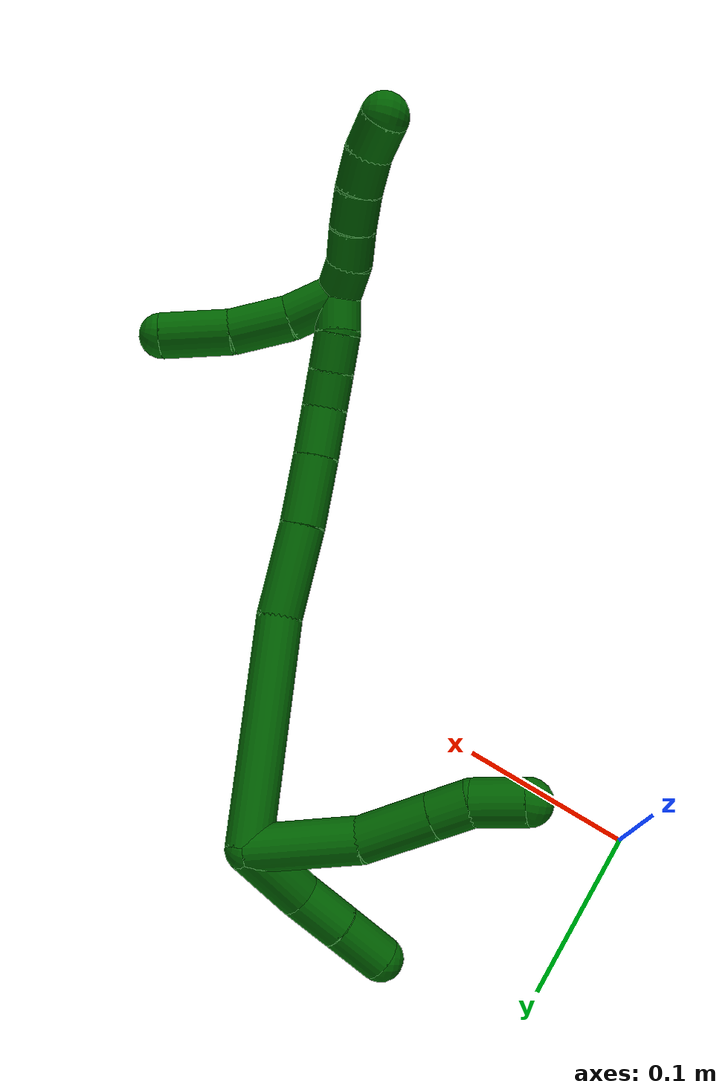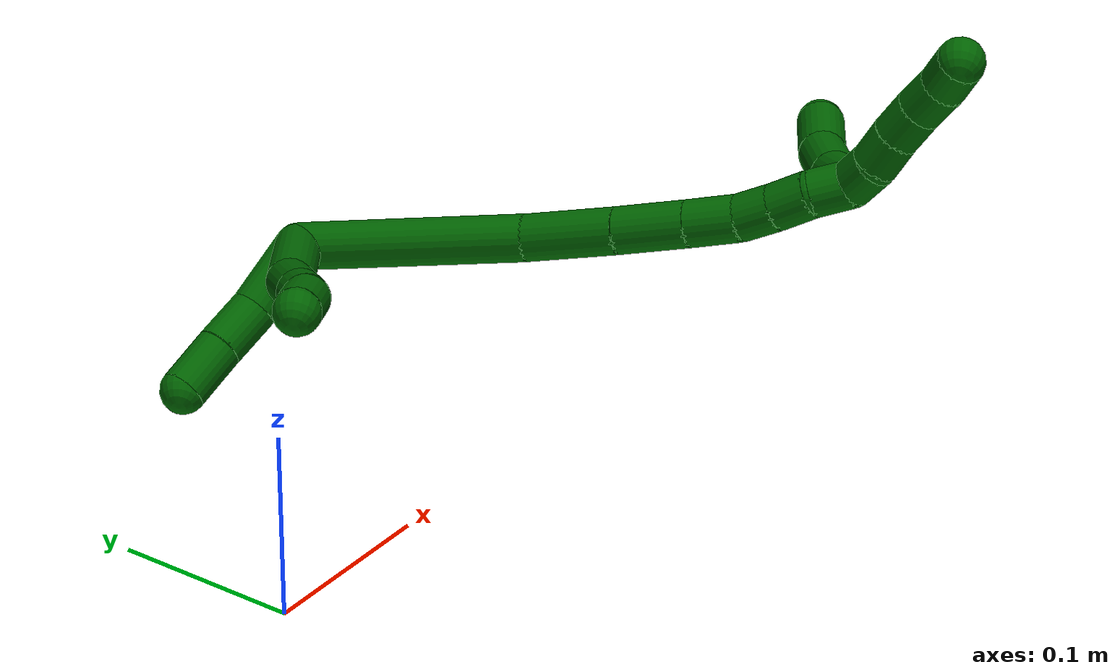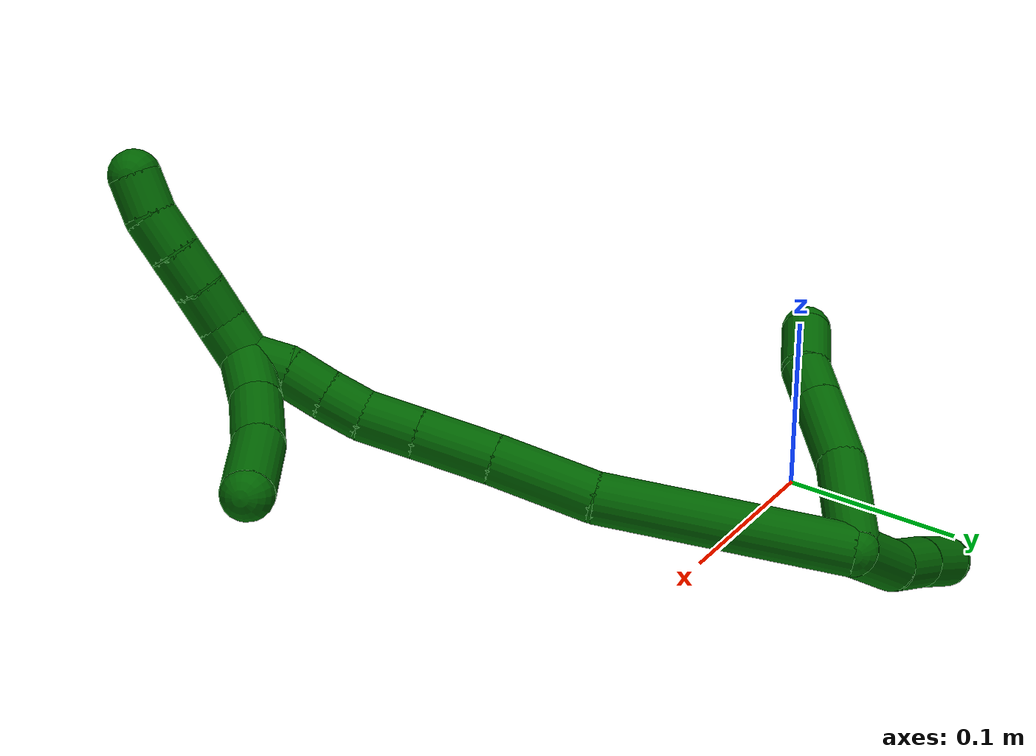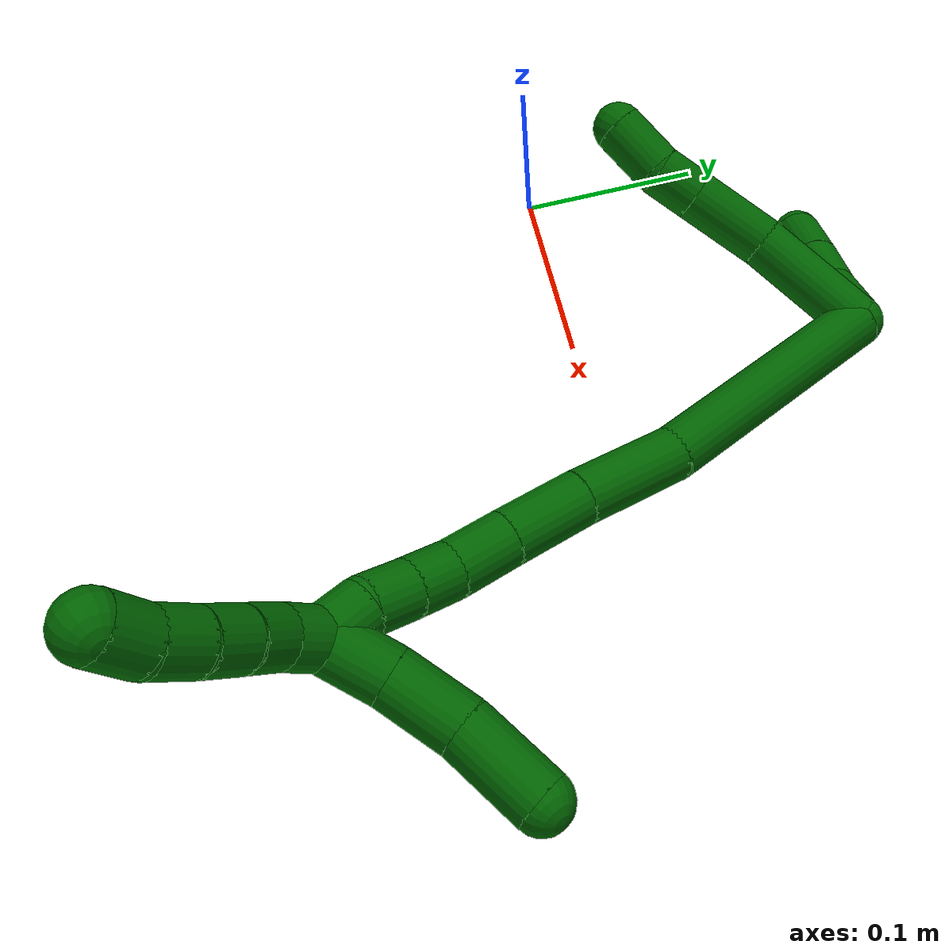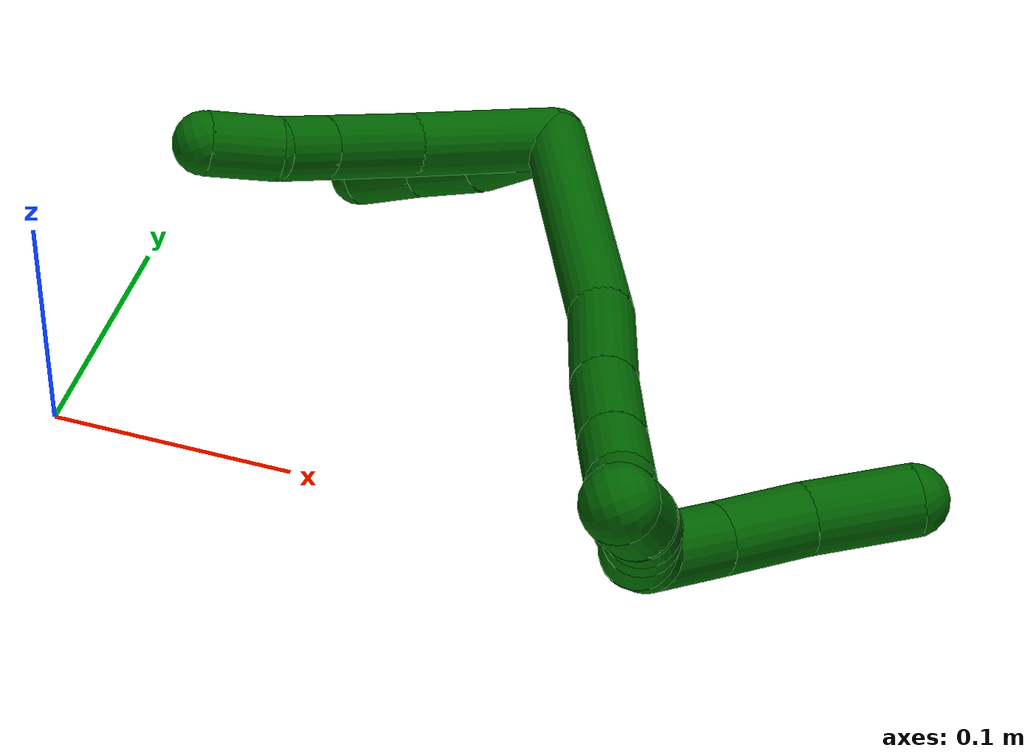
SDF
<sdf version="1.7">
 <world name="default">
  <model name="6">
   <static>0</static>
   <link name="6">
    <collision name="collision-cylinder-e_1_2_8">
     <pose>-0.00148 -0.015891 -0.025452 2.58345 -0.049288 -0.171617</pose>
     <geometry><cylinder><radius>0.0125</radius><length>0.060084</length></cylinder></geometry>
     <surface>
      <friction><ode><mu>1.16</mu><mu2>1.16</mu2><slip1>0</slip1><slip2>0</slip2></ode></friction>
      <contact><ode><kp>1e+06</kp><kd>1</kd><max_vel>0</max_vel><min_depth>0.001</min_depth></ode></contact>
     </surface>
    </collision>
    <visual name="visual-cylinder-e_1_2_8">
     <pose>-0.00148 -0.015891 -0.025452 2.58345 -0.049288 -0.171617</pose>
     <geometry><cylinder><radius>0.0125</radius><length>0.060084</length></cylinder></geometry>
     <material><ambient>0 0.392157 0.003922 1</ambient></material>
    </visual>
    <collision name="collision-cylinder-e_2_8_9">
     <pose>-0.001139 -0.046191 -0.064954 2.34363 0.090268 0.213444</pose>
     <geometry><cylinder><radius>0.0125</radius><length>0.040414</length></cylinder></geometry>
     <surface>
      <friction><ode><mu>1.16</mu><mu2>1.16</mu2><slip1>0</slip1><slip2>0</slip2></ode></friction>
      <contact><ode><kp>1e+06</kp><kd>1</kd><max_vel>0</max_vel><min_depth>0.001</min_depth></ode></contact>
     </surface>
    </collision>
    <visual name="visual-cylinder-e_2_8_9">
     <pose>-0.001139 -0.046191 -0.064954 2.34363 0.090268 0.213444</pose>
     <geometry><cylinder><radius>0.0125</radius><length>0.040414</length></cylinder></geometry>
     <material><ambient>0 0.392157 0.003922 1</ambient></material>
    </visual>
    <collision name="collision-cylinder-e_3_9_10">
     <pose>0.00162 -0.068137 -0.086336 2.34225 0.088864 0.209744</pose>
     <geometry><cylinder><radius>0.0125</radius><length>0.021115</length></cylinder></geometry>
     <surface>
      <friction><ode><mu>1.16</mu><mu2>1.16</mu2><slip1>0</slip1><slip2>0</slip2></ode></friction>
      <contact><ode><kp>1e+06</kp><kd>1</kd><max_vel>0</max_vel><min_depth>0.001</min_depth></ode></contact>
     </surface>
    </collision>
    <visual name="visual-cylinder-e_3_9_10">
     <pose>0.00162 -0.068137 -0.086336 2.34225 0.088864 0.209744</pose>
     <geometry><cylinder><radius>0.0125</radius><length>0.021115</length></cylinder></geometry>
     <material><ambient>0 0.392157 0.003922 1</ambient></material>
    </visual>
    <collision name="collision-cylinder-e_4_10_6">
     <pose>0.000345 -0.083708 -0.105159 2.53158 -0.156467 -0.488078</pose>
     <geometry><cylinder><radius>0.0125</radius><length>0.028387</length></cylinder></geometry>
     <surface>
      <friction><ode><mu>1.16</mu><mu2>1.16</mu2><slip1>0</slip1><slip2>0</slip2></ode></friction>
      <contact><ode><kp>1e+06</kp><kd>1</kd><max_vel>0</max_vel><min_depth>0.001</min_depth></ode></contact>
     </surface>
    </collision>
    <visual name="visual-cylinder-e_4_10_6">
     <pose>0.000345 -0.083708 -0.105159 2.53158 -0.156467 -0.488078</pose>
     <geometry><cylinder><radius>0.0125</radius><length>0.028387</length></cylinder></geometry>
     <material><ambient>0 0.392157 0.003922 1</ambient></material>
    </visual>
    <collision name="collision-cylinder-e_1_2_11">
     <pose>-0.006504 0.009512 -0.016921 -2.62946 -0.323281 1.11405</pose>
     <geometry><cylinder><radius>0.0125</radius><length>0.040944</length></cylinder></geometry>
     <surface>
      <friction><ode><mu>1.16</mu><mu2>1.16</mu2><slip1>0</slip1><slip2>0</slip2></ode></friction>
      <contact><ode><kp>1e+06</kp><kd>1</kd><max_vel>0</max_vel><min_depth>0.001</min_depth></ode></contact>
     </surface>
    </collision>
    <visual name="visual-cylinder-e_1_2_11">
     <pose>-0.006504 0.009512 -0.016921 -2.62946 -0.323281 1.11405</pose>
     <geometry><cylinder><radius>0.0125</radius><length>0.040944</length></cylinder></geometry>
     <material><ambient>0 0.392157 0.003922 1</ambient></material>
    </visual>
    <collision name="collision-cylinder-e_2_11_12">
     <pose>-0.018941 0.022721 -0.046425 -2.85588 -0.424885 1.96533</pose>
     <geometry><cylinder><radius>0.0125</radius><length>0.028789</length></cylinder></geometry>
     <surface>
      <friction><ode><mu>1.16</mu><mu2>1.16</mu2><slip1>0</slip1><slip2>0</slip2></ode></friction>
      <contact><ode><kp>1e+06</kp><kd>1</kd><max_vel>0</max_vel><min_depth>0.001</min_depth></ode></contact>
     </surface>
    </collision>
    <visual name="visual-cylinder-e_2_11_12">
     <pose>-0.018941 0.022721 -0.046425 -2.85588 -0.424885 1.96533</pose>
     <geometry><cylinder><radius>0.0125</radius><length>0.028789</length></cylinder></geometry>
     <material><ambient>0 0.392157 0.003922 1</ambient></material>
    </visual>
    <collision name="collision-cylinder-e_3_12_5">
     <pose>-0.030732 0.030918 -0.072216 -2.81317 -0.39743 1.76454</pose>
     <geometry><cylinder><radius>0.0125</radius><length>0.030267</length></cylinder></geometry>
     <surface>
      <friction><ode><mu>1.16</mu><mu2>1.16</mu2><slip1>0</slip1><slip2>0</slip2></ode></friction>
      <contact><ode><kp>1e+06</kp><kd>1</kd><max_vel>0</max_vel><min_depth>0.001</min_depth></ode></contact>
     </surface>
    </collision>
    <visual name="visual-cylinder-e_3_12_5">
     <pose>-0.030732 0.030918 -0.072216 -2.81317 -0.39743 1.76454</pose>
     <geometry><cylinder><radius>0.0125</radius><length>0.030267</length></cylinder></geometry>
     <material><ambient>0 0.392157 0.003922 1</ambient></material>
    </visual>
    <collision name="collision-cylinder-e_1_2_13">
     <pose>0.05398 -0.028834 0.001297 1.52583 1.07977 1.04053</pose>
     <geometry><cylinder><radius>0.0125</radius><length>0.122424</length></cylinder></geometry>
     <surface>
      <friction><ode><mu>1.16</mu><mu2>1.16</mu2><slip1>0</slip1><slip2>0</slip2></ode></friction>
      <contact><ode><kp>1e+06</kp><kd>1</kd><max_vel>0</max_vel><min_depth>0.001</min_depth></ode></contact>
     </surface>
    </collision>
    <visual name="visual-cylinder-e_1_2_13">
     <pose>0.05398 -0.028834 0.001297 1.52583 1.07977 1.04053</pose>
     <geometry><cylinder><radius>0.0125</radius><length>0.122424</length></cylinder></geometry>
     <material><ambient>0 0.392157 0.003922 1</ambient></material>
    </visual>
    <collision name="collision-cylinder-e_2_13_14">
     <pose>0.128302 -0.072702 0.001069 1.67198 0.931893 1.01567</pose>
     <geometry><cylinder><radius>0.0125</radius><length>0.05068</length></cylinder></geometry>
     <surface>
      <friction><ode><mu>1.16</mu><mu2>1.16</mu2><slip1>0</slip1><slip2>0</slip2></ode></friction>
      <contact><ode><kp>1e+06</kp><kd>1</kd><max_vel>0</max_vel><min_depth>0.001</min_depth></ode></contact>
     </surface>
    </collision>
    <visual name="visual-cylinder-e_2_13_14">
     <pose>0.128302 -0.072702 0.001069 1.67198 0.931893 1.01567</pose>
     <geometry><cylinder><radius>0.0125</radius><length>0.05068</length></cylinder></geometry>
     <material><ambient>0 0.392157 0.003922 1</ambient></material>
    </visual>
    <collision name="collision-cylinder-e_3_14_15">
     <pose>0.164207 -0.098654 -0.000709 1.59383 0.958902 0.977881</pose>
     <geometry><cylinder><radius>0.0125</radius><length>0.038026</length></cylinder></geometry>
     <surface>
      <friction><ode><mu>1.16</mu><mu2>1.16</mu2><slip1>0</slip1><slip2>0</slip2></ode></friction>
      <contact><ode><kp>1e+06</kp><kd>1</kd><max_vel>0</max_vel><min_depth>0.001</min_depth></ode></contact>
     </surface>
    </collision>
    <visual name="visual-cylinder-e_3_14_15">
     <pose>0.164207 -0.098654 -0.000709 1.59383 0.958902 0.977881</pose>
     <geometry><cylinder><radius>0.0125</radius><length>0.038026</length></cylinder></geometry>
     <material><ambient>0 0.392157 0.003922 1</ambient></material>
    </visual>
    <collision name="collision-cylinder-e_4_15_16">
     <pose>0.190971 -0.117398 -0.00089 1.56174 0.960892 0.953492</pose>
     <geometry><cylinder><radius>0.0125</radius><length>0.027327</length></cylinder></geometry>
     <surface>
      <friction><ode><mu>1.16</mu><mu2>1.16</mu2><slip1>0</slip1><slip2>0</slip2></ode></friction>
      <contact><ode><kp>1e+06</kp><kd>1</kd><max_vel>0</max_vel><min_depth>0.001</min_depth></ode></contact>
     </surface>
    </collision>
    <visual name="visual-cylinder-e_4_15_16">
     <pose>0.190971 -0.117398 -0.00089 1.56174 0.960892 0.953492</pose>
     <geometry><cylinder><radius>0.0125</radius><length>0.027327</length></cylinder></geometry>
     <material><ambient>0 0.392157 0.003922 1</ambient></material>
    </visual>
    <collision name="collision-cylinder-e_5_16_17">
     <pose>0.209167 -0.132566 -0.000276 1.49694 0.759973 0.710406</pose>
     <geometry><cylinder><radius>0.0125</radius><length>0.020312</length></cylinder></geometry>
     <surface>
      <friction><ode><mu>1.16</mu><mu2>1.16</mu2><slip1>0</slip1><slip2>0</slip2></ode></friction>
      <contact><ode><kp>1e+06</kp><kd>1</kd><max_vel>0</max_vel><min_depth>0.001</min_depth></ode></contact>
     </surface>
    </collision>
    <visual name="visual-cylinder-e_5_16_17">
     <pose>0.209167 -0.132566 -0.000276 1.49694 0.759973 0.710406</pose>
     <geometry><cylinder><radius>0.0125</radius><length>0.020312</length></cylinder></geometry>
     <material><ambient>0 0.392157 0.003922 1</ambient></material>
    </visual>
    <collision name="collision-cylinder-e_6_17_18">
     <pose>0.222953 -0.147849 0.001009 1.47769 0.705168 0.64686</pose>
     <geometry><cylinder><radius>0.0125</radius><length>0.02095</length></cylinder></geometry>
     <surface>
      <friction><ode><mu>1.16</mu><mu2>1.16</mu2><slip1>0</slip1><slip2>0</slip2></ode></friction>
      <contact><ode><kp>1e+06</kp><kd>1</kd><max_vel>0</max_vel><min_depth>0.001</min_depth></ode></contact>
     </surface>
    </collision>
    <visual name="visual-cylinder-e_6_17_18">
     <pose>0.222953 -0.147849 0.001009 1.47769 0.705168 0.64686</pose>
     <geometry><cylinder><radius>0.0125</radius><length>0.02095</length></cylinder></geometry>
     <material><ambient>0 0.392157 0.003922 1</ambient></material>
    </visual>
    <collision name="collision-cylinder-e_7_18_1">
     <pose>0.237885 -0.161548 0.003588 1.26191 0.932412 0.704586</pose>
     <geometry><cylinder><radius>0.0125</radius><length>0.02028</length></cylinder></geometry>
     <surface>
      <friction><ode><mu>1.16</mu><mu2>1.16</mu2><slip1>0</slip1><slip2>0</slip2></ode></friction>
      <contact><ode><kp>1e+06</kp><kd>1</kd><max_vel>0</max_vel><min_depth>0.001</min_depth></ode></contact>
     </surface>
    </collision>
    <visual name="visual-cylinder-e_7_18_1">
     <pose>0.237885 -0.161548 0.003588 1.26191 0.932412 0.704586</pose>
     <geometry><cylinder><radius>0.0125</radius><length>0.02028</length></cylinder></geometry>
     <material><ambient>0 0.392157 0.003922 1</ambient></material>
    </visual>
    <collision name="collision-cylinder-e_1_1_19">
     <pose>0.243864 -0.157709 0.015815 -0.745652 -0.151851 0.059489</pose>
     <geometry><cylinder><radius>0.0125</radius><length>0.028616</length></cylinder></geometry>
     <surface>
      <friction><ode><mu>1.16</mu><mu2>1.16</mu2><slip1>0</slip1><slip2>0</slip2></ode></friction>
      <contact><ode><kp>1e+06</kp><kd>1</kd><max_vel>0</max_vel><min_depth>0.001</min_depth></ode></contact>
     </surface>
    </collision>
    <visual name="visual-cylinder-e_1_1_19">
     <pose>0.243864 -0.157709 0.015815 -0.745652 -0.151851 0.059489</pose>
     <geometry><cylinder><radius>0.0125</radius><length>0.028616</length></cylinder></geometry>
     <material><ambient>0 0.392157 0.003922 1</ambient></material>
    </visual>
    <collision name="collision-cylinder-e_2_19_20">
     <pose>0.240187 -0.139458 0.04011 -0.556788 -0.092113 0.026345</pose>
     <geometry><cylinder><radius>0.0125</radius><length>0.032895</length></cylinder></geometry>
     <surface>
      <friction><ode><mu>1.16</mu><mu2>1.16</mu2><slip1>0</slip1><slip2>0</slip2></ode></friction>
      <contact><ode><kp>1e+06</kp><kd>1</kd><max_vel>0</max_vel><min_depth>0.001</min_depth></ode></contact>
     </surface>
    </collision>
    <visual name="visual-cylinder-e_2_19_20">
     <pose>0.240187 -0.139458 0.04011 -0.556788 -0.092113 0.026345</pose>
     <geometry><cylinder><radius>0.0125</radius><length>0.032895</length></cylinder></geometry>
     <material><ambient>0 0.392157 0.003922 1</ambient></material>
    </visual>
    <collision name="collision-cylinder-e_3_20_4">
     <pose>0.239073 -0.122946 0.071576 -0.420663 0.020739 -0.004428</pose>
     <geometry><cylinder><radius>0.0125</radius><length>0.038488</length></cylinder></geometry>
     <surface>
      <friction><ode><mu>1.16</mu><mu2>1.16</mu2><slip1>0</slip1><slip2>0</slip2></ode></friction>
      <contact><ode><kp>1e+06</kp><kd>1</kd><max_vel>0</max_vel><min_depth>0.001</min_depth></ode></contact>
     </surface>
    </collision>
    <visual name="visual-cylinder-e_3_20_4">
     <pose>0.239073 -0.122946 0.071576 -0.420663 0.020739 -0.004428</pose>
     <geometry><cylinder><radius>0.0125</radius><length>0.038488</length></cylinder></geometry>
     <material><ambient>0 0.392157 0.003922 1</ambient></material>
    </visual>
    <collision name="collision-cylinder-e_1_1_21">
     <pose>0.24877 -0.176921 0.005496 1.56337 0.277727 0.275699</pose>
     <geometry><cylinder><radius>0.0125</radius><length>0.02</length></cylinder></geometry>
     <surface>
      <friction><ode><mu>1.16</mu><mu2>1.16</mu2><slip1>0</slip1><slip2>0</slip2></ode></friction>
      <contact><ode><kp>1e+06</kp><kd>1</kd><max_vel>0</max_vel><min_depth>0.001</min_depth></ode></contact>
     </surface>
    </collision>
    <visual name="visual-cylinder-e_1_1_21">
     <pose>0.24877 -0.176921 0.005496 1.56337 0.277727 0.275699</pose>
     <geometry><cylinder><radius>0.0125</radius><length>0.02</length></cylinder></geometry>
     <material><ambient>0 0.392157 0.003922 1</ambient></material>
    </visual>
    <collision name="collision-cylinder-e_2_21_22">
     <pose>0.253416 -0.196051 0.00799 1.32143 0.191557 0.149068</pose>
     <geometry><cylinder><radius>0.0125</radius><length>0.02</length></cylinder></geometry>
     <surface>
      <friction><ode><mu>1.16</mu><mu2>1.16</mu2><slip1>0</slip1><slip2>0</slip2></ode></friction>
      <contact><ode><kp>1e+06</kp><kd>1</kd><max_vel>0</max_vel><min_depth>0.001</min_depth></ode></contact>
     </surface>
    </collision>
    <visual name="visual-cylinder-e_2_21_22">
     <pose>0.253416 -0.196051 0.00799 1.32143 0.191557 0.149068</pose>
     <geometry><cylinder><radius>0.0125</radius><length>0.02</length></cylinder></geometry>
     <material><ambient>0 0.392157 0.003922 1</ambient></material>
    </visual>
    <collision name="collision-cylinder-e_3_22_23">
     <pose>0.257688 -0.215119 0.012174 1.3885 0.239136 0.199374</pose>
     <geometry><cylinder><radius>0.0125</radius><length>0.02</length></cylinder></geometry>
     <surface>
      <friction><ode><mu>1.16</mu><mu2>1.16</mu2><slip1>0</slip1><slip2>0</slip2></ode></friction>
      <contact><ode><kp>1e+06</kp><kd>1</kd><max_vel>0</max_vel><min_depth>0.001</min_depth></ode></contact>
     </surface>
    </collision>
    <visual name="visual-cylinder-e_3_22_23">
     <pose>0.257688 -0.215119 0.012174 1.3885 0.239136 0.199374</pose>
     <geometry><cylinder><radius>0.0125</radius><length>0.02</length></cylinder></geometry>
     <material><ambient>0 0.392157 0.003922 1</ambient></material>
    </visual>
    <collision name="collision-cylinder-e_4_23_24">
     <pose>0.262593 -0.234313 0.014737 1.4878 0.256392 0.236146</pose>
     <geometry><cylinder><radius>0.0125</radius><length>0.02</length></cylinder></geometry>
     <surface>
      <friction><ode><mu>1.16</mu><mu2>1.16</mu2><slip1>0</slip1><slip2>0</slip2></ode></friction>
      <contact><ode><kp>1e+06</kp><kd>1</kd><max_vel>0</max_vel><min_depth>0.001</min_depth></ode></contact>
     </surface>
    </collision>
    <visual name="visual-cylinder-e_4_23_24">
     <pose>0.262593 -0.234313 0.014737 1.4878 0.256392 0.236146</pose>
     <geometry><cylinder><radius>0.0125</radius><length>0.02</length></cylinder></geometry>
     <material><ambient>0 0.392157 0.003922 1</ambient></material>
    </visual>
    <collision name="collision-cylinder-e_5_24_3">
     <pose>0.265881 -0.253912 0.015044 1.6205 0.075288 0.079122</pose>
     <geometry><cylinder><radius>0.0125</radius><length>0.02</length></cylinder></geometry>
     <surface>
      <friction><ode><mu>1.16</mu><mu2>1.16</mu2><slip1>0</slip1><slip2>0</slip2></ode></friction>
      <contact><ode><kp>1e+06</kp><kd>1</kd><max_vel>0</max_vel><min_depth>0.001</min_depth></ode></contact>
     </surface>
    </collision>
    <visual name="visual-cylinder-e_5_24_3">
     <pose>0.265881 -0.253912 0.015044 1.6205 0.075288 0.079122</pose>
     <geometry><cylinder><radius>0.0125</radius><length>0.02</length></cylinder></geometry>
     <material><ambient>0 0.392157 0.003922 1</ambient></material>
    </visual>
    <collision name="collision-sphere-3">
     <pose>0.266633 -0.263872 0.014548 0 -0 0</pose>
     <geometry><sphere><radius>0.0125</radius></sphere></geometry>
     <surface>
      <friction><ode><mu>1.16</mu><mu2>1.16</mu2><slip1>0</slip1><slip2>0</slip2></ode></friction>
      <contact><ode><kp>1e+06</kp><kd>1</kd><max_vel>0</max_vel><min_depth>0.001</min_depth></ode></contact>
     </surface>
    </collision>
    <visual name="visual-sphere-3">
     <pose>0.266633 -0.263872 0.014548 0 -0 0</pose>
     <geometry><sphere><radius>0.0125</radius></sphere></geometry>
     <material><ambient>0 0.392157 0.003922 1</ambient></material>
    </visual>
    <collision name="collision-sphere-24">
     <pose>0.265129 -0.243953 0.015539 0 -0 0</pose>
     <geometry><sphere><radius>0.0125</radius></sphere></geometry>
     <surface>
      <friction><ode><mu>1.16</mu><mu2>1.16</mu2><slip1>0</slip1><slip2>0</slip2></ode></friction>
      <contact><ode><kp>1e+06</kp><kd>1</kd><max_vel>0</max_vel><min_depth>0.001</min_depth></ode></contact>
     </surface>
    </collision>
    <visual name="visual-sphere-24">
     <pose>0.265129 -0.243953 0.015539 0 -0 0</pose>
     <geometry><sphere><radius>0.0125</radius></sphere></geometry>
     <material><ambient>0 0.392157 0.003922 1</ambient></material>
    </visual>
    <collision name="collision-sphere-23">
     <pose>0.260057 -0.224673 0.013935 0 -0 0</pose>
     <geometry><sphere><radius>0.0125</radius></sphere></geometry>
     <surface>
      <friction><ode><mu>1.16</mu><mu2>1.16</mu2><slip1>0</slip1><slip2>0</slip2></ode></friction>
      <contact><ode><kp>1e+06</kp><kd>1</kd><max_vel>0</max_vel><min_depth>0.001</min_depth></ode></contact>
     </surface>
    </collision>
    <visual name="visual-sphere-23">
     <pose>0.260057 -0.224673 0.013935 0 -0 0</pose>
     <geometry><sphere><radius>0.0125</radius></sphere></geometry>
     <material><ambient>0 0.392157 0.003922 1</ambient></material>
    </visual>
    <collision name="collision-sphere-22">
     <pose>0.25532 -0.205565 0.010413 0 -0 0</pose>
     <geometry><sphere><radius>0.0125</radius></sphere></geometry>
     <surface>
      <friction><ode><mu>1.16</mu><mu2>1.16</mu2><slip1>0</slip1><slip2>0</slip2></ode></friction>
      <contact><ode><kp>1e+06</kp><kd>1</kd><max_vel>0</max_vel><min_depth>0.001</min_depth></ode></contact>
     </surface>
    </collision>
    <visual name="visual-sphere-22">
     <pose>0.25532 -0.205565 0.010413 0 -0 0</pose>
     <geometry><sphere><radius>0.0125</radius></sphere></geometry>
     <material><ambient>0 0.392157 0.003922 1</ambient></material>
    </visual>
    <collision name="collision-sphere-21">
     <pose>0.251512 -0.186538 0.005567 0 -0 0</pose>
     <geometry><sphere><radius>0.0125</radius></sphere></geometry>
     <surface>
      <friction><ode><mu>1.16</mu><mu2>1.16</mu2><slip1>0</slip1><slip2>0</slip2></ode></friction>
      <contact><ode><kp>1e+06</kp><kd>1</kd><max_vel>0</max_vel><min_depth>0.001</min_depth></ode></contact>
     </surface>
    </collision>
    <visual name="visual-sphere-21">
     <pose>0.251512 -0.186538 0.005567 0 -0 0</pose>
     <geometry><sphere><radius>0.0125</radius></sphere></geometry>
     <material><ambient>0 0.392157 0.003922 1</ambient></material>
    </visual>
    <collision name="collision-sphere-4">
     <pose>0.239472 -0.115089 0.089139 0 -0 0</pose>
     <geometry><sphere><radius>0.0125</radius></sphere></geometry>
     <surface>
      <friction><ode><mu>1.16</mu><mu2>1.16</mu2><slip1>0</slip1><slip2>0</slip2></ode></friction>
      <contact><ode><kp>1e+06</kp><kd>1</kd><max_vel>0</max_vel><min_depth>0.001</min_depth></ode></contact>
     </surface>
    </collision>
    <visual name="visual-sphere-4">
     <pose>0.239472 -0.115089 0.089139 0 -0 0</pose>
     <geometry><sphere><radius>0.0125</radius></sphere></geometry>
     <material><ambient>0 0.392157 0.003922 1</ambient></material>
    </visual>
    <collision name="collision-sphere-20">
     <pose>0.238674 -0.130803 0.054014 0 -0 0</pose>
     <geometry><sphere><radius>0.0125</radius></sphere></geometry>
     <surface>
      <friction><ode><mu>1.16</mu><mu2>1.16</mu2><slip1>0</slip1><slip2>0</slip2></ode></friction>
      <contact><ode><kp>1e+06</kp><kd>1</kd><max_vel>0</max_vel><min_depth>0.001</min_depth></ode></contact>
     </surface>
    </collision>
    <visual name="visual-sphere-20">
     <pose>0.238674 -0.130803 0.054014 0 -0 0</pose>
     <geometry><sphere><radius>0.0125</radius></sphere></geometry>
     <material><ambient>0 0.392157 0.003922 1</ambient></material>
    </visual>
    <collision name="collision-sphere-11">
     <pose>-0.013007 0.019025 -0.033842 0 -0 0</pose>
     <geometry><sphere><radius>0.0125</radius></sphere></geometry>
     <surface>
      <friction><ode><mu>1.16</mu><mu2>1.16</mu2><slip1>0</slip1><slip2>0</slip2></ode></friction>
      <contact><ode><kp>1e+06</kp><kd>1</kd><max_vel>0</max_vel><min_depth>0.001</min_depth></ode></contact>
     </surface>
    </collision>
    <visual name="visual-sphere-11">
     <pose>-0.013007 0.019025 -0.033842 0 -0 0</pose>
     <geometry><sphere><radius>0.0125</radius></sphere></geometry>
     <material><ambient>0 0.392157 0.003922 1</ambient></material>
    </visual>
    <collision name="collision-sphere-6">
     <pose>-0.001867 -0.09174 -0.11665 0 -0 0</pose>
     <geometry><sphere><radius>0.0125</radius></sphere></geometry>
     <surface>
      <friction><ode><mu>1.16</mu><mu2>1.16</mu2><slip1>0</slip1><slip2>0</slip2></ode></friction>
      <contact><ode><kp>1e+06</kp><kd>1</kd><max_vel>0</max_vel><min_depth>0.001</min_depth></ode></contact>
     </surface>
    </collision>
    <visual name="visual-sphere-6">
     <pose>-0.001867 -0.09174 -0.11665 0 -0 0</pose>
     <geometry><sphere><radius>0.0125</radius></sphere></geometry>
     <material><ambient>0 0.392157 0.003922 1</ambient></material>
    </visual>
    <collision name="collision-sphere-10">
     <pose>0.002557 -0.075676 -0.093668 0 -0 0</pose>
     <geometry><sphere><radius>0.0125</radius></sphere></geometry>
     <surface>
      <friction><ode><mu>1.16</mu><mu2>1.16</mu2><slip1>0</slip1><slip2>0</slip2></ode></friction>
      <contact><ode><kp>1e+06</kp><kd>1</kd><max_vel>0</max_vel><min_depth>0.001</min_depth></ode></contact>
     </surface>
    </collision>
    <visual name="visual-sphere-10">
     <pose>0.002557 -0.075676 -0.093668 0 -0 0</pose>
     <geometry><sphere><radius>0.0125</radius></sphere></geometry>
     <material><ambient>0 0.392157 0.003922 1</ambient></material>
    </visual>
    <collision name="collision-sphere-9">
     <pose>0.000683 -0.060599 -0.079005 0 -0 0</pose>
     <geometry><sphere><radius>0.0125</radius></sphere></geometry>
     <surface>
      <friction><ode><mu>1.16</mu><mu2>1.16</mu2><slip1>0</slip1><slip2>0</slip2></ode></friction>
      <contact><ode><kp>1e+06</kp><kd>1</kd><max_vel>0</max_vel><min_depth>0.001</min_depth></ode></contact>
     </surface>
    </collision>
    <visual name="visual-sphere-9">
     <pose>0.000683 -0.060599 -0.079005 0 -0 0</pose>
     <geometry><sphere><radius>0.0125</radius></sphere></geometry>
     <material><ambient>0 0.392157 0.003922 1</ambient></material>
    </visual>
    <collision name="collision-sphere-2">
     <geometry><sphere><radius>0.0125</radius></sphere></geometry>
     <surface>
      <friction><ode><mu>1.16</mu><mu2>1.16</mu2><slip1>0</slip1><slip2>0</slip2></ode></friction>
      <contact><ode><kp>1e+06</kp><kd>1</kd><max_vel>0</max_vel><min_depth>0.001</min_depth></ode></contact>
     </surface>
    </collision>
    <visual name="visual-sphere-2">
     <geometry><sphere><radius>0.0125</radius></sphere></geometry>
     <material><ambient>0 0.392157 0.003922 1</ambient></material>
    </visual>
    <collision name="collision-sphere-19">
     <pose>0.2417 -0.148113 0.026205 0 -0 0</pose>
     <geometry><sphere><radius>0.0125</radius></sphere></geometry>
     <surface>
      <friction><ode><mu>1.16</mu><mu2>1.16</mu2><slip1>0</slip1><slip2>0</slip2></ode></friction>
      <contact><ode><kp>1e+06</kp><kd>1</kd><max_vel>0</max_vel><min_depth>0.001</min_depth></ode></contact>
     </surface>
    </collision>
    <visual name="visual-sphere-19">
     <pose>0.2417 -0.148113 0.026205 0 -0 0</pose>
     <geometry><sphere><radius>0.0125</radius></sphere></geometry>
     <material><ambient>0 0.392157 0.003922 1</ambient></material>
    </visual>
    <collision name="collision-sphere-8">
     <pose>-0.00296 -0.031783 -0.050904 0 -0 0</pose>
     <geometry><sphere><radius>0.0125</radius></sphere></geometry>
     <surface>
      <friction><ode><mu>1.16</mu><mu2>1.16</mu2><slip1>0</slip1><slip2>0</slip2></ode></friction>
      <contact><ode><kp>1e+06</kp><kd>1</kd><max_vel>0</max_vel><min_depth>0.001</min_depth></ode></contact>
     </surface>
    </collision>
    <visual name="visual-sphere-8">
     <pose>-0.00296 -0.031783 -0.050904 0 -0 0</pose>
     <geometry><sphere><radius>0.0125</radius></sphere></geometry>
     <material><ambient>0 0.392157 0.003922 1</ambient></material>
    </visual>
    <collision name="collision-sphere-12">
     <pose>-0.024874 0.026417 -0.059008 0 -0 0</pose>
     <geometry><sphere><radius>0.0125</radius></sphere></geometry>
     <surface>
      <friction><ode><mu>1.16</mu><mu2>1.16</mu2><slip1>0</slip1><slip2>0</slip2></ode></friction>
      <contact><ode><kp>1e+06</kp><kd>1</kd><max_vel>0</max_vel><min_depth>0.001</min_depth></ode></contact>
     </surface>
    </collision>
    <visual name="visual-sphere-12">
     <pose>-0.024874 0.026417 -0.059008 0 -0 0</pose>
     <geometry><sphere><radius>0.0125</radius></sphere></geometry>
     <material><ambient>0 0.392157 0.003922 1</ambient></material>
    </visual>
    <collision name="collision-sphere-5">
     <pose>-0.036589 0.035419 -0.085424 0 -0 0</pose>
     <geometry><sphere><radius>0.0125</radius></sphere></geometry>
     <surface>
      <friction><ode><mu>1.16</mu><mu2>1.16</mu2><slip1>0</slip1><slip2>0</slip2></ode></friction>
      <contact><ode><kp>1e+06</kp><kd>1</kd><max_vel>0</max_vel><min_depth>0.001</min_depth></ode></contact>
     </surface>
    </collision>
    <visual name="visual-sphere-5">
     <pose>-0.036589 0.035419 -0.085424 0 -0 0</pose>
     <geometry><sphere><radius>0.0125</radius></sphere></geometry>
     <material><ambient>0 0.392157 0.003922 1</ambient></material>
    </visual>
    <collision name="collision-sphere-13">
     <pose>0.10796 -0.057668 0.002595 0 -0 0</pose>
     <geometry><sphere><radius>0.0125</radius></sphere></geometry>
     <surface>
      <friction><ode><mu>1.16</mu><mu2>1.16</mu2><slip1>0</slip1><slip2>0</slip2></ode></friction>
      <contact><ode><kp>1e+06</kp><kd>1</kd><max_vel>0</max_vel><min_depth>0.001</min_depth></ode></contact>
     </surface>
    </collision>
    <visual name="visual-sphere-13">
     <pose>0.10796 -0.057668 0.002595 0 -0 0</pose>
     <geometry><sphere><radius>0.0125</radius></sphere></geometry>
     <material><ambient>0 0.392157 0.003922 1</ambient></material>
    </visual>
    <collision name="collision-sphere-14">
     <pose>0.148644 -0.087735 -0.000458 0 -0 0</pose>
     <geometry><sphere><radius>0.0125</radius></sphere></geometry>
     <surface>
      <friction><ode><mu>1.16</mu><mu2>1.16</mu2><slip1>0</slip1><slip2>0</slip2></ode></friction>
      <contact><ode><kp>1e+06</kp><kd>1</kd><max_vel>0</max_vel><min_depth>0.001</min_depth></ode></contact>
     </surface>
    </collision>
    <visual name="visual-sphere-14">
     <pose>0.148644 -0.087735 -0.000458 0 -0 0</pose>
     <geometry><sphere><radius>0.0125</radius></sphere></geometry>
     <material><ambient>0 0.392157 0.003922 1</ambient></material>
    </visual>
    <collision name="collision-sphere-15">
     <pose>0.179771 -0.109572 -0.000961 0 -0 0</pose>
     <geometry><sphere><radius>0.0125</radius></sphere></geometry>
     <surface>
      <friction><ode><mu>1.16</mu><mu2>1.16</mu2><slip1>0</slip1><slip2>0</slip2></ode></friction>
      <contact><ode><kp>1e+06</kp><kd>1</kd><max_vel>0</max_vel><min_depth>0.001</min_depth></ode></contact>
     </surface>
    </collision>
    <visual name="visual-sphere-15">
     <pose>0.179771 -0.109572 -0.000961 0 -0 0</pose>
     <geometry><sphere><radius>0.0125</radius></sphere></geometry>
     <material><ambient>0 0.392157 0.003922 1</ambient></material>
    </visual>
    <collision name="collision-sphere-16">
     <pose>0.20217 -0.125224 -0.000819 0 -0 0</pose>
     <geometry><sphere><radius>0.0125</radius></sphere></geometry>
     <surface>
      <friction><ode><mu>1.16</mu><mu2>1.16</mu2><slip1>0</slip1><slip2>0</slip2></ode></friction>
      <contact><ode><kp>1e+06</kp><kd>1</kd><max_vel>0</max_vel><min_depth>0.001</min_depth></ode></contact>
     </surface>
    </collision>
    <visual name="visual-sphere-16">
     <pose>0.20217 -0.125224 -0.000819 0 -0 0</pose>
     <geometry><sphere><radius>0.0125</radius></sphere></geometry>
     <material><ambient>0 0.392157 0.003922 1</ambient></material>
    </visual>
    <collision name="collision-sphere-17">
     <pose>0.216163 -0.139907 0.000267 0 -0 0</pose>
     <geometry><sphere><radius>0.0125</radius></sphere></geometry>
     <surface>
      <friction><ode><mu>1.16</mu><mu2>1.16</mu2><slip1>0</slip1><slip2>0</slip2></ode></friction>
      <contact><ode><kp>1e+06</kp><kd>1</kd><max_vel>0</max_vel><min_depth>0.001</min_depth></ode></contact>
     </surface>
    </collision>
    <visual name="visual-sphere-17">
     <pose>0.216163 -0.139907 0.000267 0 -0 0</pose>
     <geometry><sphere><radius>0.0125</radius></sphere></geometry>
     <material><ambient>0 0.392157 0.003922 1</ambient></material>
    </visual>
    <collision name="collision-sphere-18">
     <pose>0.229742 -0.155791 0.001751 0 -0 0</pose>
     <geometry><sphere><radius>0.0125</radius></sphere></geometry>
     <surface>
      <friction><ode><mu>1.16</mu><mu2>1.16</mu2><slip1>0</slip1><slip2>0</slip2></ode></friction>
      <contact><ode><kp>1e+06</kp><kd>1</kd><max_vel>0</max_vel><min_depth>0.001</min_depth></ode></contact>
     </surface>
    </collision>
    <visual name="visual-sphere-18">
     <pose>0.229742 -0.155791 0.001751 0 -0 0</pose>
     <geometry><sphere><radius>0.0125</radius></sphere></geometry>
     <material><ambient>0 0.392157 0.003922 1</ambient></material>
    </visual>
    <collision name="collision-sphere-1">
     <pose>0.246029 -0.167305 0.005424 0 -0 0</pose>
     <geometry><sphere><radius>0.0125</radius></sphere></geometry>
     <surface>
      <friction><ode><mu>1.16</mu><mu2>1.16</mu2><slip1>0</slip1><slip2>0</slip2></ode></friction>
      <contact><ode><kp>1e+06</kp><kd>1</kd><max_vel>0</max_vel><min_depth>0.001</min_depth></ode></contact>
     </surface>
    </collision>
    <visual name="visual-sphere-1">
     <pose>0.246029 -0.167305 0.005424 0 -0 0</pose>
     <geometry><sphere><radius>0.0125</radius></sphere></geometry>
     <material><ambient>0 0.392157 0.003922 1</ambient></material>
    </visual>
    <inertial>
     <pose>0.11511 -0.084342 -0.009723 0 -0 0</pose>
     <mass>0.75</mass>
     <inertia>
      <ixx>0.000205</ixx>
      <ixy>0</ixy>
      <ixz>0</ixz>
      <iyy>0.000195</iyy>
      <iyz>0</iyz>
      <izz>-5.9e-05</izz>
     </inertia>
    </inertial>
   </link>
   <pose>0.170083 0.123137 0.09137 -1.1908 0.326348 -0.979265</pose>
  </model>
 </world>
</sdf>
